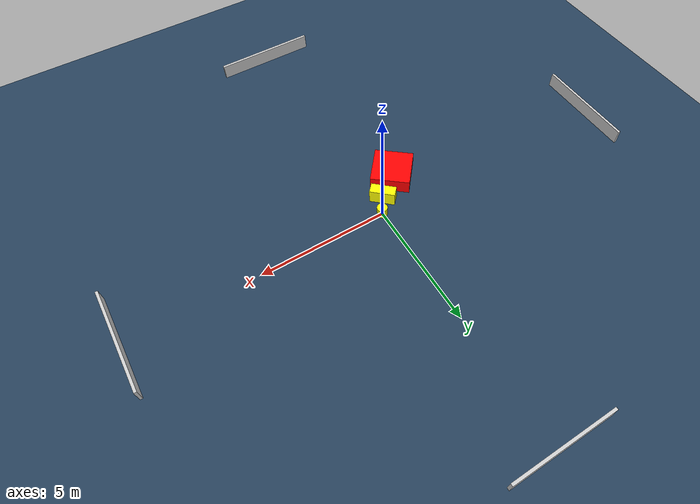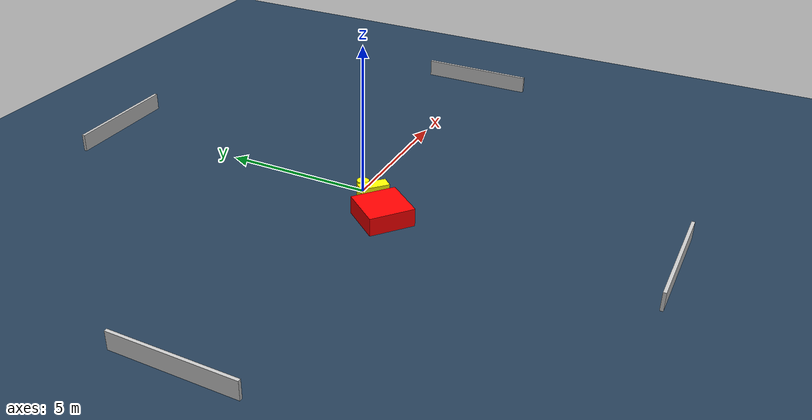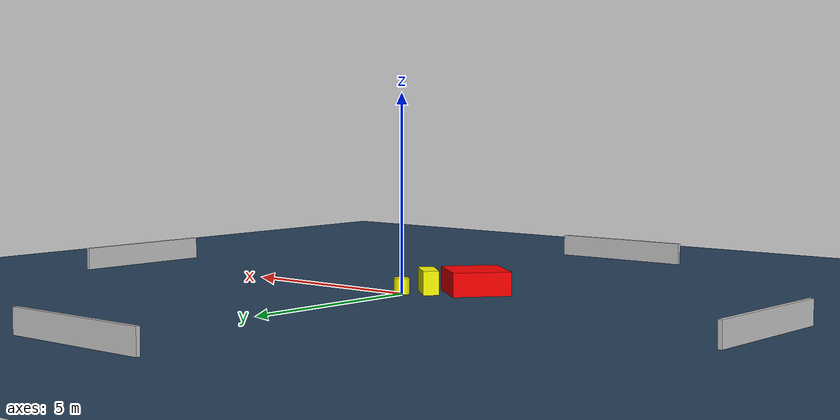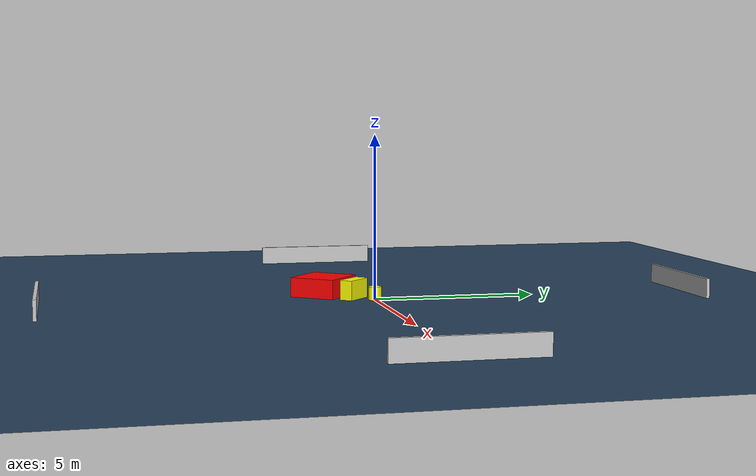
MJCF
<?xml version="1.0" ?>
<mujoco model="generated_environment">
  <option timestep="0.01" integrator="RK4" cone="elliptic"/>
  <default>
    <geom density="1"/>
  </default>
  <asset>
    <texture builtin="gradient" height="3072" name="skybox" rgb1="0.3 0.5 0.7" rgb2="0 0 0" type="skybox" width="512"/>
    <texture builtin="checker" height="300" name="groundplane" rgb1="0.2 0.3 0.4" rgb2="0.1 0.2 0.3" type="2d" width="300"/>
    <material name="groundplane" reflectance="0.2" texrepeat="5 5" texture="groundplane"/>
  </asset>
  <worldbody>
    <light dir="0 0 -1" directional="true" pos="0 0 1.5"/>
    <geom condim="3" friction="0.5 0.005 0.001" material="groundplane" name="floor" pos="0 0 0" size="0 0 0.05" type="plane"/>
    <body name="walls">
      <geom name="wall_1" condim="4" pos="-10.0 0.0 0.3" rgba="0.800000011920929 0.800000011920929 0.800000011920929 1.0" size="0.05 2.0 0.3" type="box"/>
      <geom name="wall_2" condim="4" pos="10.0 0.0 0.3" rgba="0.800000011920929 0.800000011920929 0.800000011920929 1.0" size="0.05 2.0 0.3" type="box"/>
      <geom name="wall_3" condim="4" pos="0.0 -10.0 0.3" rgba="0.800000011920929 0.800000011920929 0.800000011920929 1.0" size="2.0 0.05 0.3" type="box"/>
      <geom name="wall_4" condim="4" pos="0.0 10.0 0.3" rgba="0.800000011920929 0.800000011920929 0.800000011920929 1.0" size="2.0 0.05 0.3" type="box"/>
    </body>
    <body name="robot">
      <joint name="joint_x" type="slide" pos="0 0 0" axis="1 0 0"/>
      <joint name="joint_y" type="slide" pos="0 0 0" axis="0 1 0"/>
      <geom name="robot" type="cylinder" pos="0.0 0.0 0.2" size="0.2 0.2 0.0" mass="5.0" friction="1.0 0.005 0.0001" condim="4" rgba="1.0 1.0 0.0 1.0"/>
    </body>
    <body name="obstacle_1_movable">
      <geom name="obstacle_1_movable" condim="4" pos="-0.3915477080606006 -0.5733419580179545 0.3" euler="0 0 137.69495060278402" friction="0.0 0.005 0.001" rgba="1.0 1.0 0.0 1.0" size="0.48582074718631685 0.2021762714678026 0.3" type="box" mass="0.1"/>
      <joint type="free"/>
    </body>
    <body name="obstacle_2_static">
      <geom name="obstacle_2_static" condim="4" pos="-1.282691592620527 -1.3484786097684205 0.3" euler="0 0 50.76289073536321" friction="0.0 0.005 0.001" rgba="1.0 0.0 0.0 1.0" size="0.7352697556948062 0.7558815998536499 0.3" type="box"/>
    </body>
  </worldbody>
  <actuator>
    <motor name="actuator_x" joint="joint_x" gear="1" ctrlrange="-1 1"/>
    <motor name="actuator_y" joint="joint_y" gear="1" ctrlrange="-1 1"/>
  </actuator>
</mujoco>
